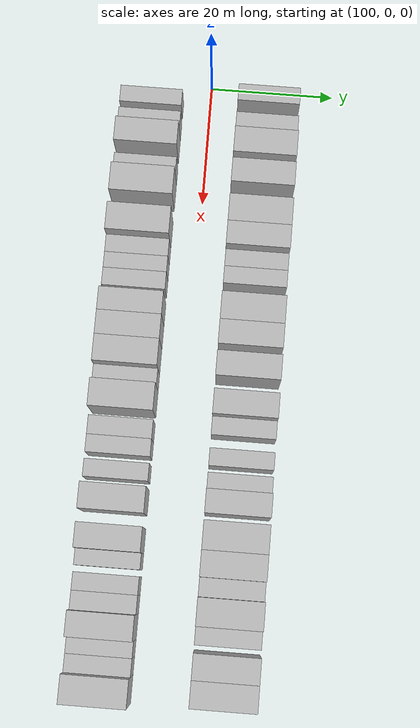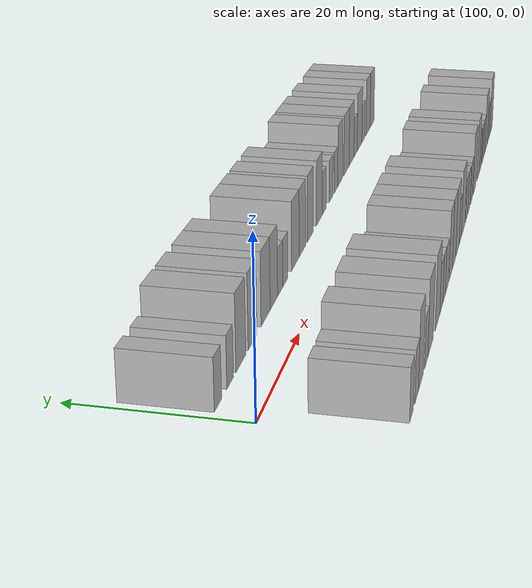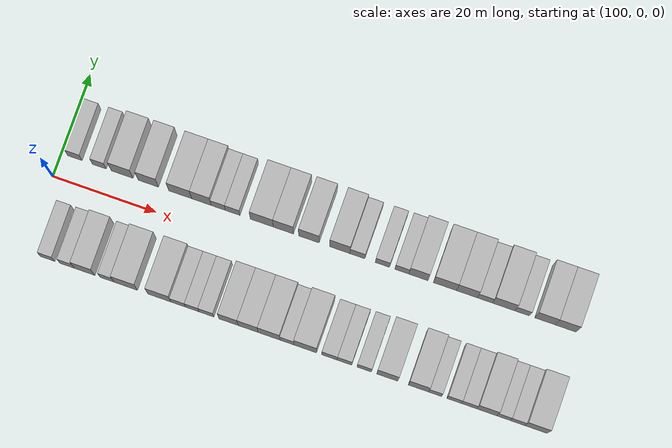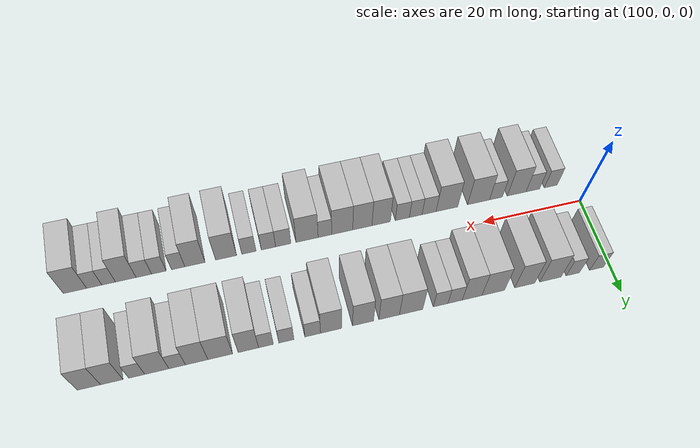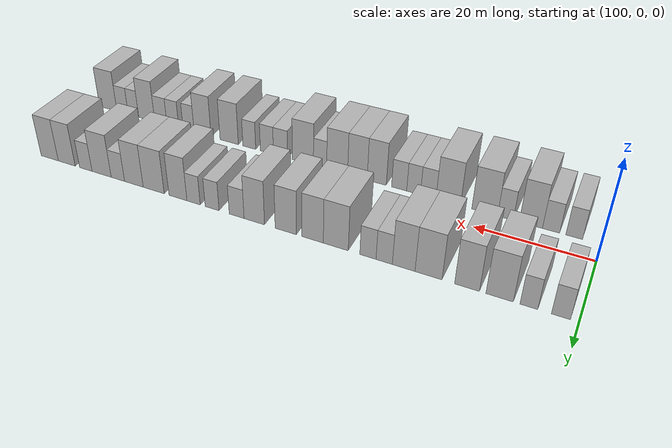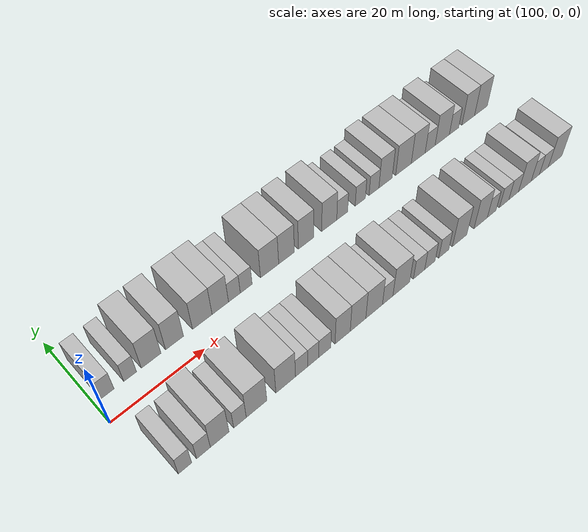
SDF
<sdf version="1.6">
 <world name="default">
  <model name="building_25">
   <static>1</static>
   <pose>102.6334 9.5000 0 0.000000 0.000000 1.570796</pose>
   <link name="link">
    <pose>0 0 3.00 0 0 0</pose>
    <collision name="collision"><geometry><box><size>10.0000 2.7807 6.0000</size></box></geometry></collision>
    <visual name="visual">
     <cast_shadows>0</cast_shadows>
     <geometry><box><size>10.0000 2.7807 6.0000</size></box></geometry>
     <material>
      <script>
       <uri>model://HANNAS_wall/materials/scripts</uri>
       <uri>model://HANNAS_wall/materials/textures</uri>
       <name>vrc/HANNAS_wall</name>
      </script>
     </material>
    </visual>
   </link>
  </model>
  <model name="building_26">
   <static>1</static>
   <pose>107.3550 9.5000 0 0.000000 0.000000 1.570796</pose>
   <link name="link">
    <pose>0 0 3.00 0 0 0</pose>
    <collision name="collision"><geometry><box><size>10.0000 2.6625 6.0000</size></box></geometry></collision>
    <visual name="visual">
     <cast_shadows>0</cast_shadows>
     <geometry><box><size>10.0000 2.6625 6.0000</size></box></geometry>
     <material>
      <script>
       <uri>model://HANNAS_wall/materials/scripts</uri>
       <uri>model://HANNAS_wall/materials/textures</uri>
       <name>vrc/HANNAS_wall</name>
      </script>
     </material>
    </visual>
   </link>
  </model>
  <model name="building_27">
   <static>1</static>
   <pose>111.7815 9.5000 0 0.000000 0.000000 1.570796</pose>
   <link name="link">
    <pose>0 0 4.50 0 0 0</pose>
    <collision name="collision"><geometry><box><size>10.0000 4.1905 9.0000</size></box></geometry></collision>
    <visual name="visual">
     <cast_shadows>0</cast_shadows>
     <geometry><box><size>10.0000 4.1905 9.0000</size></box></geometry>
     <material>
      <script>
       <uri>model://HANNAS_wall/materials/scripts</uri>
       <uri>model://HANNAS_wall/materials/textures</uri>
       <name>vrc/HANNAS_wall</name>
      </script>
     </material>
    </visual>
   </link>
  </model>
  <model name="building_28">
   <static>1</static>
   <pose>116.8333 9.5000 0 0.000000 0.000000 1.570796</pose>
   <link name="link">
    <pose>0 0 4.50 0 0 0</pose>
    <collision name="collision"><geometry><box><size>10.0000 3.9132 9.0000</size></box></geometry></collision>
    <visual name="visual">
     <cast_shadows>0</cast_shadows>
     <geometry><box><size>10.0000 3.9132 9.0000</size></box></geometry>
     <material>
      <script>
       <uri>model://HANNAS_wall/materials/scripts</uri>
       <uri>model://HANNAS_wall/materials/textures</uri>
       <name>vrc/HANNAS_wall</name>
      </script>
     </material>
    </visual>
   </link>
  </model>
  <model name="building_29">
   <static>1</static>
   <pose>122.9893 9.5000 0 0.000000 0.000000 1.570796</pose>
   <link name="link">
    <pose>0 0 4.50 0 0 0</pose>
    <collision name="collision"><geometry><box><size>10.0000 4.3988 9.0000</size></box></geometry></collision>
    <visual name="visual">
     <cast_shadows>0</cast_shadows>
     <geometry><box><size>10.0000 4.3988 9.0000</size></box></geometry>
     <material>
      <script>
       <uri>model://HANNAS_wall/materials/scripts</uri>
       <uri>model://HANNAS_wall/materials/textures</uri>
       <name>vrc/HANNAS_wall</name>
      </script>
     </material>
    </visual>
   </link>
  </model>
  <model name="building_30">
   <static>1</static>
   <pose>127.0721 9.5000 0 0.000000 0.000000 1.570796</pose>
   <link name="link">
    <pose>0 0 4.50 0 0 0</pose>
    <collision name="collision"><geometry><box><size>10.0000 3.7666 9.0000</size></box></geometry></collision>
    <visual name="visual">
     <cast_shadows>0</cast_shadows>
     <geometry><box><size>10.0000 3.7666 9.0000</size></box></geometry>
     <material>
      <script>
       <uri>model://HANNAS_wall/materials/scripts</uri>
       <uri>model://HANNAS_wall/materials/textures</uri>
       <name>vrc/HANNAS_wall</name>
      </script>
     </material>
    </visual>
   </link>
  </model>
  <model name="building_31">
   <static>1</static>
   <pose>130.3317 9.5000 0 0.000000 0.000000 1.570796</pose>
   <link name="link">
    <pose>0 0 3.00 0 0 0</pose>
    <collision name="collision"><geometry><box><size>10.0000 2.7527 6.0000</size></box></geometry></collision>
    <visual name="visual">
     <cast_shadows>0</cast_shadows>
     <geometry><box><size>10.0000 2.7527 6.0000</size></box></geometry>
     <material>
      <script>
       <uri>model://HANNAS_wall/materials/scripts</uri>
       <uri>model://HANNAS_wall/materials/textures</uri>
       <name>vrc/HANNAS_wall</name>
      </script>
     </material>
    </visual>
   </link>
  </model>
  <model name="building_32">
   <static>1</static>
   <pose>133.1014 9.5000 0 0.000000 0.000000 1.570796</pose>
   <link name="link">
    <pose>0 0 3.00 0 0 0</pose>
    <collision name="collision"><geometry><box><size>10.0000 2.7868 6.0000</size></box></geometry></collision>
    <visual name="visual">
     <cast_shadows>0</cast_shadows>
     <geometry><box><size>10.0000 2.7868 6.0000</size></box></geometry>
     <material>
      <script>
       <uri>model://HANNAS_wall/materials/scripts</uri>
       <uri>model://HANNAS_wall/materials/textures</uri>
       <name>vrc/HANNAS_wall</name>
      </script>
     </material>
    </visual>
   </link>
  </model>
  <model name="building_33">
   <static>1</static>
   <pose>138.6992 9.5000 0 0.000000 0.000000 1.570796</pose>
   <link name="link">
    <pose>0 0 4.50 0 0 0</pose>
    <collision name="collision"><geometry><box><size>10.0000 4.4088 9.0000</size></box></geometry></collision>
    <visual name="visual">
     <cast_shadows>0</cast_shadows>
     <geometry><box><size>10.0000 4.4088 9.0000</size></box></geometry>
     <material>
      <script>
       <uri>model://HANNAS_wall/materials/scripts</uri>
       <uri>model://HANNAS_wall/materials/textures</uri>
       <name>vrc/HANNAS_wall</name>
      </script>
     </material>
    </visual>
   </link>
  </model>
  <model name="building_34">
   <static>1</static>
   <pose>142.8364 9.5000 0 0.000000 0.000000 1.570796</pose>
   <link name="link">
    <pose>0 0 4.50 0 0 0</pose>
    <collision name="collision"><geometry><box><size>10.0000 3.8655 9.0000</size></box></geometry></collision>
    <visual name="visual">
     <cast_shadows>0</cast_shadows>
     <geometry><box><size>10.0000 3.8655 9.0000</size></box></geometry>
     <material>
      <script>
       <uri>model://HANNAS_wall/materials/scripts</uri>
       <uri>model://HANNAS_wall/materials/textures</uri>
       <name>vrc/HANNAS_wall</name>
      </script>
     </material>
    </visual>
   </link>
  </model>
  <model name="building_35">
   <static>1</static>
   <pose>147.7309 9.5000 0 0.000000 0.000000 1.570796</pose>
   <link name="link">
    <pose>0 0 4.50 0 0 0</pose>
    <collision name="collision"><geometry><box><size>10.0000 3.9235 9.0000</size></box></geometry></collision>
    <visual name="visual">
     <cast_shadows>0</cast_shadows>
     <geometry><box><size>10.0000 3.9235 9.0000</size></box></geometry>
     <material>
      <script>
       <uri>model://HANNAS_wall/materials/scripts</uri>
       <uri>model://HANNAS_wall/materials/textures</uri>
       <name>vrc/HANNAS_wall</name>
      </script>
     </material>
    </visual>
   </link>
  </model>
  <model name="building_36">
   <static>1</static>
   <pose>153.6406 9.5000 0 0.000000 0.000000 1.570796</pose>
   <link name="link">
    <pose>0 0 4.50 0 0 0</pose>
    <collision name="collision"><geometry><box><size>10.0000 3.8959 9.0000</size></box></geometry></collision>
    <visual name="visual">
     <cast_shadows>0</cast_shadows>
     <geometry><box><size>10.0000 3.8959 9.0000</size></box></geometry>
     <material>
      <script>
       <uri>model://HANNAS_wall/materials/scripts</uri>
       <uri>model://HANNAS_wall/materials/textures</uri>
       <name>vrc/HANNAS_wall</name>
      </script>
     </material>
    </visual>
   </link>
  </model>
  <model name="building_37">
   <static>1</static>
   <pose>157.0237 9.5000 0 0.000000 0.000000 1.570796</pose>
   <link name="link">
    <pose>0 0 3.00 0 0 0</pose>
    <collision name="collision"><geometry><box><size>10.0000 2.8703 6.0000</size></box></geometry></collision>
    <visual name="visual">
     <cast_shadows>0</cast_shadows>
     <geometry><box><size>10.0000 2.8703 6.0000</size></box></geometry>
     <material>
      <script>
       <uri>model://HANNAS_wall/materials/scripts</uri>
       <uri>model://HANNAS_wall/materials/textures</uri>
       <name>vrc/HANNAS_wall</name>
      </script>
     </material>
    </visual>
   </link>
  </model>
  <model name="building_38">
   <static>1</static>
   <pose>161.8284 9.5000 0 0.000000 0.000000 1.570796</pose>
   <link name="link">
    <pose>0 0 3.00 0 0 0</pose>
    <collision name="collision"><geometry><box><size>10.0000 2.7392 6.0000</size></box></geometry></collision>
    <visual name="visual">
     <cast_shadows>0</cast_shadows>
     <geometry><box><size>10.0000 2.7392 6.0000</size></box></geometry>
     <material>
      <script>
       <uri>model://HANNAS_wall/materials/scripts</uri>
       <uri>model://HANNAS_wall/materials/textures</uri>
       <name>vrc/HANNAS_wall</name>
      </script>
     </material>
    </visual>
   </link>
  </model>
  <model name="building_39">
   <static>1</static>
   <pose>165.5387 9.5000 0 0.000000 0.000000 1.570796</pose>
   <link name="link">
    <pose>0 0 3.00 0 0 0</pose>
    <collision name="collision"><geometry><box><size>10.0000 2.6815 6.0000</size></box></geometry></collision>
    <visual name="visual">
     <cast_shadows>0</cast_shadows>
     <geometry><box><size>10.0000 2.6815 6.0000</size></box></geometry>
     <material>
      <script>
       <uri>model://HANNAS_wall/materials/scripts</uri>
       <uri>model://HANNAS_wall/materials/textures</uri>
       <name>vrc/HANNAS_wall</name>
      </script>
     </material>
    </visual>
   </link>
  </model>
  <model name="building_40">
   <static>1</static>
   <pose>168.7153 9.5000 0 0.000000 0.000000 1.570796</pose>
   <link name="link">
    <pose>0 0 4.50 0 0 0</pose>
    <collision name="collision"><geometry><box><size>10.0000 3.6718 9.0000</size></box></geometry></collision>
    <visual name="visual">
     <cast_shadows>0</cast_shadows>
     <geometry><box><size>10.0000 3.6718 9.0000</size></box></geometry>
     <material>
      <script>
       <uri>model://HANNAS_wall/materials/scripts</uri>
       <uri>model://HANNAS_wall/materials/textures</uri>
       <name>vrc/HANNAS_wall</name>
      </script>
     </material>
    </visual>
   </link>
  </model>
  <model name="building_41">
   <static>1</static>
   <pose>173.7579 9.5000 0 0.000000 0.000000 1.570796</pose>
   <link name="link">
    <pose>0 0 4.50 0 0 0</pose>
    <collision name="collision"><geometry><box><size>10.0000 4.4134 9.0000</size></box></geometry></collision>
    <visual name="visual">
     <cast_shadows>0</cast_shadows>
     <geometry><box><size>10.0000 4.4134 9.0000</size></box></geometry>
     <material>
      <script>
       <uri>model://HANNAS_wall/materials/scripts</uri>
       <uri>model://HANNAS_wall/materials/textures</uri>
       <name>vrc/HANNAS_wall</name>
      </script>
     </material>
    </visual>
   </link>
  </model>
  <model name="building_42">
   <static>1</static>
   <pose>177.9568 9.5000 0 0.000000 0.000000 1.570796</pose>
   <link name="link">
    <pose>0 0 4.50 0 0 0</pose>
    <collision name="collision"><geometry><box><size>10.0000 3.9843 9.0000</size></box></geometry></collision>
    <visual name="visual">
     <cast_shadows>0</cast_shadows>
     <geometry><box><size>10.0000 3.9843 9.0000</size></box></geometry>
     <material>
      <script>
       <uri>model://HANNAS_wall/materials/scripts</uri>
       <uri>model://HANNAS_wall/materials/textures</uri>
       <name>vrc/HANNAS_wall</name>
      </script>
     </material>
    </visual>
   </link>
  </model>
  <model name="building_43">
   <static>1</static>
   <pose>181.4050 9.5000 0 0.000000 0.000000 1.570796</pose>
   <link name="link">
    <pose>0 0 3.00 0 0 0</pose>
    <collision name="collision"><geometry><box><size>10.0000 2.9121 6.0000</size></box></geometry></collision>
    <visual name="visual">
     <cast_shadows>0</cast_shadows>
     <geometry><box><size>10.0000 2.9121 6.0000</size></box></geometry>
     <material>
      <script>
       <uri>model://HANNAS_wall/materials/scripts</uri>
       <uri>model://HANNAS_wall/materials/textures</uri>
       <name>vrc/HANNAS_wall</name>
      </script>
     </material>
    </visual>
   </link>
  </model>
  <model name="building_44">
   <static>1</static>
   <pose>184.9823 9.5000 0 0.000000 0.000000 1.570796</pose>
   <link name="link">
    <pose>0 0 4.50 0 0 0</pose>
    <collision name="collision"><geometry><box><size>10.0000 4.2425 9.0000</size></box></geometry></collision>
    <visual name="visual">
     <cast_shadows>0</cast_shadows>
     <geometry><box><size>10.0000 4.2425 9.0000</size></box></geometry>
     <material>
      <script>
       <uri>model://HANNAS_wall/materials/scripts</uri>
       <uri>model://HANNAS_wall/materials/textures</uri>
       <name>vrc/HANNAS_wall</name>
      </script>
     </material>
    </visual>
   </link>
  </model>
  <model name="building_45">
   <static>1</static>
   <pose>188.5037 9.5000 0 0.000000 0.000000 1.570796</pose>
   <link name="link">
    <pose>0 0 3.00 0 0 0</pose>
    <collision name="collision"><geometry><box><size>10.0000 2.8004 6.0000</size></box></geometry></collision>
    <visual name="visual">
     <cast_shadows>0</cast_shadows>
     <geometry><box><size>10.0000 2.8004 6.0000</size></box></geometry>
     <material>
      <script>
       <uri>model://HANNAS_wall/materials/scripts</uri>
       <uri>model://HANNAS_wall/materials/textures</uri>
       <name>vrc/HANNAS_wall</name>
      </script>
     </material>
    </visual>
   </link>
  </model>
  <model name="building_46">
   <static>1</static>
   <pose>192.8395 9.5000 0 0.000000 0.000000 1.570796</pose>
   <link name="link">
    <pose>0 0 4.50 0 0 0</pose>
    <collision name="collision"><geometry><box><size>10.0000 3.8710 9.0000</size></box></geometry></collision>
    <visual name="visual">
     <cast_shadows>0</cast_shadows>
     <geometry><box><size>10.0000 3.8710 9.0000</size></box></geometry>
     <material>
      <script>
       <uri>model://HANNAS_wall/materials/scripts</uri>
       <uri>model://HANNAS_wall/materials/textures</uri>
       <name>vrc/HANNAS_wall</name>
      </script>
     </material>
    </visual>
   </link>
  </model>
  <model name="building_47">
   <static>1</static>
   <pose>196.7690 9.5000 0 0.000000 0.000000 1.570796</pose>
   <link name="link">
    <pose>0 0 4.50 0 0 0</pose>
    <collision name="collision"><geometry><box><size>10.0000 3.9881 9.0000</size></box></geometry></collision>
    <visual name="visual">
     <cast_shadows>0</cast_shadows>
     <geometry><box><size>10.0000 3.9881 9.0000</size></box></geometry>
     <material>
      <script>
       <uri>model://HANNAS_wall/materials/scripts</uri>
       <uri>model://HANNAS_wall/materials/textures</uri>
       <name>vrc/HANNAS_wall</name>
      </script>
     </material>
    </visual>
   </link>
  </model>
  <model name="building_73">
   <static>1</static>
   <pose>104.3411 -9.5000 0 0.000000 0.000000 1.570796</pose>
   <link name="link">
    <pose>0 0 3.00 0 0 0</pose>
    <collision name="collision"><geometry><box><size>10.0000 2.7102 6.0000</size></box></geometry></collision>
    <visual name="visual">
     <cast_shadows>0</cast_shadows>
     <geometry><box><size>10.0000 2.7102 6.0000</size></box></geometry>
     <material>
      <script>
       <uri>model://HANNAS_wall/materials/scripts</uri>
       <uri>model://HANNAS_wall/materials/textures</uri>
       <name>vrc/HANNAS_wall</name>
      </script>
     </material>
    </visual>
   </link>
  </model>
  <model name="building_74">
   <static>1</static>
   <pose>108.1156 -9.5000 0 0.000000 0.000000 1.570796</pose>
   <link name="link">
    <pose>0 0 3.00 0 0 0</pose>
    <collision name="collision"><geometry><box><size>10.0000 2.8386 6.0000</size></box></geometry></collision>
    <visual name="visual">
     <cast_shadows>0</cast_shadows>
     <geometry><box><size>10.0000 2.8386 6.0000</size></box></geometry>
     <material>
      <script>
       <uri>model://HANNAS_wall/materials/scripts</uri>
       <uri>model://HANNAS_wall/materials/textures</uri>
       <name>vrc/HANNAS_wall</name>
      </script>
     </material>
    </visual>
   </link>
  </model>
  <model name="building_75">
   <static>1</static>
   <pose>111.4880 -9.5000 0 0.000000 0.000000 1.570796</pose>
   <link name="link">
    <pose>0 0 4.50 0 0 0</pose>
    <collision name="collision"><geometry><box><size>10.0000 3.9063 9.0000</size></box></geometry></collision>
    <visual name="visual">
     <cast_shadows>0</cast_shadows>
     <geometry><box><size>10.0000 3.9063 9.0000</size></box></geometry>
     <material>
      <script>
       <uri>model://HANNAS_wall/materials/scripts</uri>
       <uri>model://HANNAS_wall/materials/textures</uri>
       <name>vrc/HANNAS_wall</name>
      </script>
     </material>
    </visual>
   </link>
  </model>
  <model name="building_76">
   <static>1</static>
   <pose>115.7838 -9.5000 0 0.000000 0.000000 1.570796</pose>
   <link name="link">
    <pose>0 0 3.00 0 0 0</pose>
    <collision name="collision"><geometry><box><size>10.0000 2.6854 6.0000</size></box></geometry></collision>
    <visual name="visual">
     <cast_shadows>0</cast_shadows>
     <geometry><box><size>10.0000 2.6854 6.0000</size></box></geometry>
     <material>
      <script>
       <uri>model://HANNAS_wall/materials/scripts</uri>
       <uri>model://HANNAS_wall/materials/textures</uri>
       <name>vrc/HANNAS_wall</name>
      </script>
     </material>
    </visual>
   </link>
  </model>
  <model name="building_77">
   <static>1</static>
   <pose>119.3742 -9.5000 0 0.000000 0.000000 1.570796</pose>
   <link name="link">
    <pose>0 0 4.50 0 0 0</pose>
    <collision name="collision"><geometry><box><size>10.0000 4.4952 9.0000</size></box></geometry></collision>
    <visual name="visual">
     <cast_shadows>0</cast_shadows>
     <geometry><box><size>10.0000 4.4952 9.0000</size></box></geometry>
     <material>
      <script>
       <uri>model://HANNAS_wall/materials/scripts</uri>
       <uri>model://HANNAS_wall/materials/textures</uri>
       <name>vrc/HANNAS_wall</name>
      </script>
     </material>
    </visual>
   </link>
  </model>
  <model name="building_78">
   <static>1</static>
   <pose>125.8295 -9.5000 0 0.000000 0.000000 1.570796</pose>
   <link name="link">
    <pose>0 0 4.50 0 0 0</pose>
    <collision name="collision"><geometry><box><size>10.0000 4.4155 9.0000</size></box></geometry></collision>
    <visual name="visual">
     <cast_shadows>0</cast_shadows>
     <geometry><box><size>10.0000 4.4155 9.0000</size></box></geometry>
     <material>
      <script>
       <uri>model://HANNAS_wall/materials/scripts</uri>
       <uri>model://HANNAS_wall/materials/textures</uri>
       <name>vrc/HANNAS_wall</name>
      </script>
     </material>
    </visual>
   </link>
  </model>
  <model name="building_79">
   <static>1</static>
   <pose>129.4561 -9.5000 0 0.000000 0.000000 1.570796</pose>
   <link name="link">
    <pose>0 0 3.00 0 0 0</pose>
    <collision name="collision"><geometry><box><size>10.0000 2.8378 6.0000</size></box></geometry></collision>
    <visual name="visual">
     <cast_shadows>0</cast_shadows>
     <geometry><box><size>10.0000 2.8378 6.0000</size></box></geometry>
     <material>
      <script>
       <uri>model://HANNAS_wall/materials/scripts</uri>
       <uri>model://HANNAS_wall/materials/textures</uri>
       <name>vrc/HANNAS_wall</name>
      </script>
     </material>
    </visual>
   </link>
  </model>
  <model name="building_80">
   <static>1</static>
   <pose>132.1487 -9.5000 0 0.000000 0.000000 1.570796</pose>
   <link name="link">
    <pose>0 0 3.00 0 0 0</pose>
    <collision name="collision"><geometry><box><size>10.0000 2.5473 6.0000</size></box></geometry></collision>
    <visual name="visual">
     <cast_shadows>0</cast_shadows>
     <geometry><box><size>10.0000 2.5473 6.0000</size></box></geometry>
     <material>
      <script>
       <uri>model://HANNAS_wall/materials/scripts</uri>
       <uri>model://HANNAS_wall/materials/textures</uri>
       <name>vrc/HANNAS_wall</name>
      </script>
     </material>
    </visual>
   </link>
  </model>
  <model name="building_81">
   <static>1</static>
   <pose>134.8396 -9.5000 0 0.000000 0.000000 1.570796</pose>
   <link name="link">
    <pose>0 0 3.00 0 0 0</pose>
    <collision name="collision"><geometry><box><size>10.0000 2.8346 6.0000</size></box></geometry></collision>
    <visual name="visual">
     <cast_shadows>0</cast_shadows>
     <geometry><box><size>10.0000 2.8346 6.0000</size></box></geometry>
     <material>
      <script>
       <uri>model://HANNAS_wall/materials/scripts</uri>
       <uri>model://HANNAS_wall/materials/textures</uri>
       <name>vrc/HANNAS_wall</name>
      </script>
     </material>
    </visual>
   </link>
  </model>
  <model name="building_82">
   <static>1</static>
   <pose>139.0860 -9.5000 0 0.000000 0.000000 1.570796</pose>
   <link name="link">
    <pose>0 0 4.50 0 0 0</pose>
    <collision name="collision"><geometry><box><size>10.0000 3.6582 9.0000</size></box></geometry></collision>
    <visual name="visual">
     <cast_shadows>0</cast_shadows>
     <geometry><box><size>10.0000 3.6582 9.0000</size></box></geometry>
     <material>
      <script>
       <uri>model://HANNAS_wall/materials/scripts</uri>
       <uri>model://HANNAS_wall/materials/textures</uri>
       <name>vrc/HANNAS_wall</name>
      </script>
     </material>
    </visual>
   </link>
  </model>
  <model name="building_83">
   <static>1</static>
   <pose>142.8212 -9.5000 0 0.000000 0.000000 1.570796</pose>
   <link name="link">
    <pose>0 0 4.50 0 0 0</pose>
    <collision name="collision"><geometry><box><size>10.0000 3.8121 9.0000</size></box></geometry></collision>
    <visual name="visual">
     <cast_shadows>0</cast_shadows>
     <geometry><box><size>10.0000 3.8121 9.0000</size></box></geometry>
     <material>
      <script>
       <uri>model://HANNAS_wall/materials/scripts</uri>
       <uri>model://HANNAS_wall/materials/textures</uri>
       <name>vrc/HANNAS_wall</name>
      </script>
     </material>
    </visual>
   </link>
  </model>
  <model name="building_84">
   <static>1</static>
   <pose>146.8036 -9.5000 0 0.000000 0.000000 1.570796</pose>
   <link name="link">
    <pose>0 0 4.50 0 0 0</pose>
    <collision name="collision"><geometry><box><size>10.0000 4.1526 9.0000</size></box></geometry></collision>
    <visual name="visual">
     <cast_shadows>0</cast_shadows>
     <geometry><box><size>10.0000 4.1526 9.0000</size></box></geometry>
     <material>
      <script>
       <uri>model://HANNAS_wall/materials/scripts</uri>
       <uri>model://HANNAS_wall/materials/textures</uri>
       <name>vrc/HANNAS_wall</name>
      </script>
     </material>
    </visual>
   </link>
  </model>
  <model name="building_85">
   <static>1</static>
   <pose>150.2123 -9.5000 0 0.000000 0.000000 1.570796</pose>
   <link name="link">
    <pose>0 0 3.00 0 0 0</pose>
    <collision name="collision"><geometry><box><size>10.0000 2.6647 6.0000</size></box></geometry></collision>
    <visual name="visual">
     <cast_shadows>0</cast_shadows>
     <geometry><box><size>10.0000 2.6647 6.0000</size></box></geometry>
     <material>
      <script>
       <uri>model://HANNAS_wall/materials/scripts</uri>
       <uri>model://HANNAS_wall/materials/textures</uri>
       <name>vrc/HANNAS_wall</name>
      </script>
     </material>
    </visual>
   </link>
  </model>
  <model name="building_86">
   <static>1</static>
   <pose>153.6963 -9.5000 0 0.000000 0.000000 1.570796</pose>
   <link name="link">
    <pose>0 0 4.50 0 0 0</pose>
    <collision name="collision"><geometry><box><size>10.0000 4.3033 9.0000</size></box></geometry></collision>
    <visual name="visual">
     <cast_shadows>0</cast_shadows>
     <geometry><box><size>10.0000 4.3033 9.0000</size></box></geometry>
     <material>
      <script>
       <uri>model://HANNAS_wall/materials/scripts</uri>
       <uri>model://HANNAS_wall/materials/textures</uri>
       <name>vrc/HANNAS_wall</name>
      </script>
     </material>
    </visual>
   </link>
  </model>
  <model name="building_87">
   <static>1</static>
   <pose>158.3274 -9.5000 0 0.000000 0.000000 1.570796</pose>
   <link name="link">
    <pose>0 0 3.00 0 0 0</pose>
    <collision name="collision"><geometry><box><size>10.0000 2.9588 6.0000</size></box></geometry></collision>
    <visual name="visual">
     <cast_shadows>0</cast_shadows>
     <geometry><box><size>10.0000 2.9588 6.0000</size></box></geometry>
     <material>
      <script>
       <uri>model://HANNAS_wall/materials/scripts</uri>
       <uri>model://HANNAS_wall/materials/textures</uri>
       <name>vrc/HANNAS_wall</name>
      </script>
     </material>
    </visual>
   </link>
  </model>
  <model name="building_88">
   <static>1</static>
   <pose>161.1870 -9.5000 0 0.000000 0.000000 1.570796</pose>
   <link name="link">
    <pose>0 0 3.00 0 0 0</pose>
    <collision name="collision"><geometry><box><size>10.0000 2.7605 6.0000</size></box></geometry></collision>
    <visual name="visual">
     <cast_shadows>0</cast_shadows>
     <geometry><box><size>10.0000 2.7605 6.0000</size></box></geometry>
     <material>
      <script>
       <uri>model://HANNAS_wall/materials/scripts</uri>
       <uri>model://HANNAS_wall/materials/textures</uri>
       <name>vrc/HANNAS_wall</name>
      </script>
     </material>
    </visual>
   </link>
  </model>
  <model name="building_89">
   <static>1</static>
   <pose>164.9374 -9.5000 0 0.000000 0.000000 1.570796</pose>
   <link name="link">
    <pose>0 0 3.00 0 0 0</pose>
    <collision name="collision"><geometry><box><size>10.0000 2.7402 6.0000</size></box></geometry></collision>
    <visual name="visual">
     <cast_shadows>0</cast_shadows>
     <geometry><box><size>10.0000 2.7402 6.0000</size></box></geometry>
     <material>
      <script>
       <uri>model://HANNAS_wall/materials/scripts</uri>
       <uri>model://HANNAS_wall/materials/textures</uri>
       <name>vrc/HANNAS_wall</name>
      </script>
     </material>
    </visual>
   </link>
  </model>
  <model name="building_90">
   <static>1</static>
   <pose>169.3121 -9.5000 0 0.000000 0.000000 1.570796</pose>
   <link name="link">
    <pose>0 0 4.50 0 0 0</pose>
    <collision name="collision"><geometry><box><size>10.0000 4.0094 9.0000</size></box></geometry></collision>
    <visual name="visual">
     <cast_shadows>0</cast_shadows>
     <geometry><box><size>10.0000 4.0094 9.0000</size></box></geometry>
     <material>
      <script>
       <uri>model://HANNAS_wall/materials/scripts</uri>
       <uri>model://HANNAS_wall/materials/textures</uri>
       <name>vrc/HANNAS_wall</name>
      </script>
     </material>
    </visual>
   </link>
  </model>
  <model name="building_91">
   <static>1</static>
   <pose>175.2211 -9.5000 0 0.000000 0.000000 1.570796</pose>
   <link name="link">
    <pose>0 0 4.50 0 0 0</pose>
    <collision name="collision"><geometry><box><size>10.0000 3.8085 9.0000</size></box></geometry></collision>
    <visual name="visual">
     <cast_shadows>0</cast_shadows>
     <geometry><box><size>10.0000 3.8085 9.0000</size></box></geometry>
     <material>
      <script>
       <uri>model://HANNAS_wall/materials/scripts</uri>
       <uri>model://HANNAS_wall/materials/textures</uri>
       <name>vrc/HANNAS_wall</name>
      </script>
     </material>
    </visual>
   </link>
  </model>
  <model name="building_92">
   <static>1</static>
   <pose>178.3792 -9.5000 0 0.000000 0.000000 1.570796</pose>
   <link name="link">
    <pose>0 0 3.00 0 0 0</pose>
    <collision name="collision"><geometry><box><size>10.0000 2.5077 6.0000</size></box></geometry></collision>
    <visual name="visual">
     <cast_shadows>0</cast_shadows>
     <geometry><box><size>10.0000 2.5077 6.0000</size></box></geometry>
     <material>
      <script>
       <uri>model://HANNAS_wall/materials/scripts</uri>
       <uri>model://HANNAS_wall/materials/textures</uri>
       <name>vrc/HANNAS_wall</name>
      </script>
     </material>
    </visual>
   </link>
  </model>
  <model name="building_93">
   <static>1</static>
   <pose>181.9990 -9.5000 0 0.000000 0.000000 1.570796</pose>
   <link name="link">
    <pose>0 0 3.00 0 0 0</pose>
    <collision name="collision"><geometry><box><size>10.0000 2.7320 6.0000</size></box></geometry></collision>
    <visual name="visual">
     <cast_shadows>0</cast_shadows>
     <geometry><box><size>10.0000 2.7320 6.0000</size></box></geometry>
     <material>
      <script>
       <uri>model://HANNAS_wall/materials/scripts</uri>
       <uri>model://HANNAS_wall/materials/textures</uri>
       <name>vrc/HANNAS_wall</name>
      </script>
     </material>
    </visual>
   </link>
  </model>
  <model name="building_94">
   <static>1</static>
   <pose>184.8038 -9.5000 0 0.000000 0.000000 1.570796</pose>
   <link name="link">
    <pose>0 0 3.00 0 0 0</pose>
    <collision name="collision"><geometry><box><size>10.0000 2.8775 6.0000</size></box></geometry></collision>
    <visual name="visual">
     <cast_shadows>0</cast_shadows>
     <geometry><box><size>10.0000 2.8775 6.0000</size></box></geometry>
     <material>
      <script>
       <uri>model://HANNAS_wall/materials/scripts</uri>
       <uri>model://HANNAS_wall/materials/textures</uri>
       <name>vrc/HANNAS_wall</name>
      </script>
     </material>
    </visual>
   </link>
  </model>
  <model name="building_95">
   <static>1</static>
   <pose>188.1518 -9.5000 0 0.000000 0.000000 1.570796</pose>
   <link name="link">
    <pose>0 0 4.50 0 0 0</pose>
    <collision name="collision"><geometry><box><size>10.0000 3.8186 9.0000</size></box></geometry></collision>
    <visual name="visual">
     <cast_shadows>0</cast_shadows>
     <geometry><box><size>10.0000 3.8186 9.0000</size></box></geometry>
     <material>
      <script>
       <uri>model://HANNAS_wall/materials/scripts</uri>
       <uri>model://HANNAS_wall/materials/textures</uri>
       <name>vrc/HANNAS_wall</name>
      </script>
     </material>
    </visual>
   </link>
  </model>
  <model name="building_96">
   <static>1</static>
   <pose>191.3246 -9.5000 0 0.000000 0.000000 1.570796</pose>
   <link name="link">
    <pose>0 0 3.00 0 0 0</pose>
    <collision name="collision"><geometry><box><size>10.0000 2.5269 6.0000</size></box></geometry></collision>
    <visual name="visual">
     <cast_shadows>0</cast_shadows>
     <geometry><box><size>10.0000 2.5269 6.0000</size></box></geometry>
     <material>
      <script>
       <uri>model://HANNAS_wall/materials/scripts</uri>
       <uri>model://HANNAS_wall/materials/textures</uri>
       <name>vrc/HANNAS_wall</name>
      </script>
     </material>
    </visual>
   </link>
  </model>
  <model name="building_97">
   <static>1</static>
   <pose>193.9678 -9.5000 0 0.000000 0.000000 1.570796</pose>
   <link name="link">
    <pose>0 0 3.00 0 0 0</pose>
    <collision name="collision"><geometry><box><size>10.0000 2.7595 6.0000</size></box></geometry></collision>
    <visual name="visual">
     <cast_shadows>0</cast_shadows>
     <geometry><box><size>10.0000 2.7595 6.0000</size></box></geometry>
     <material>
      <script>
       <uri>model://HANNAS_wall/materials/scripts</uri>
       <uri>model://HANNAS_wall/materials/textures</uri>
       <name>vrc/HANNAS_wall</name>
      </script>
     </material>
    </visual>
   </link>
  </model>
  <model name="building_98">
   <static>1</static>
   <pose>197.4852 -9.5000 0 0.000000 0.000000 1.570796</pose>
   <link name="link">
    <pose>0 0 4.50 0 0 0</pose>
    <collision name="collision"><geometry><box><size>10.0000 4.2752 9.0000</size></box></geometry></collision>
    <visual name="visual">
     <cast_shadows>0</cast_shadows>
     <geometry><box><size>10.0000 4.2752 9.0000</size></box></geometry>
     <material>
      <script>
       <uri>model://HANNAS_wall/materials/scripts</uri>
       <uri>model://HANNAS_wall/materials/textures</uri>
       <name>vrc/HANNAS_wall</name>
      </script>
     </material>
    </visual>
   </link>
  </model>
 </world>
</sdf>
